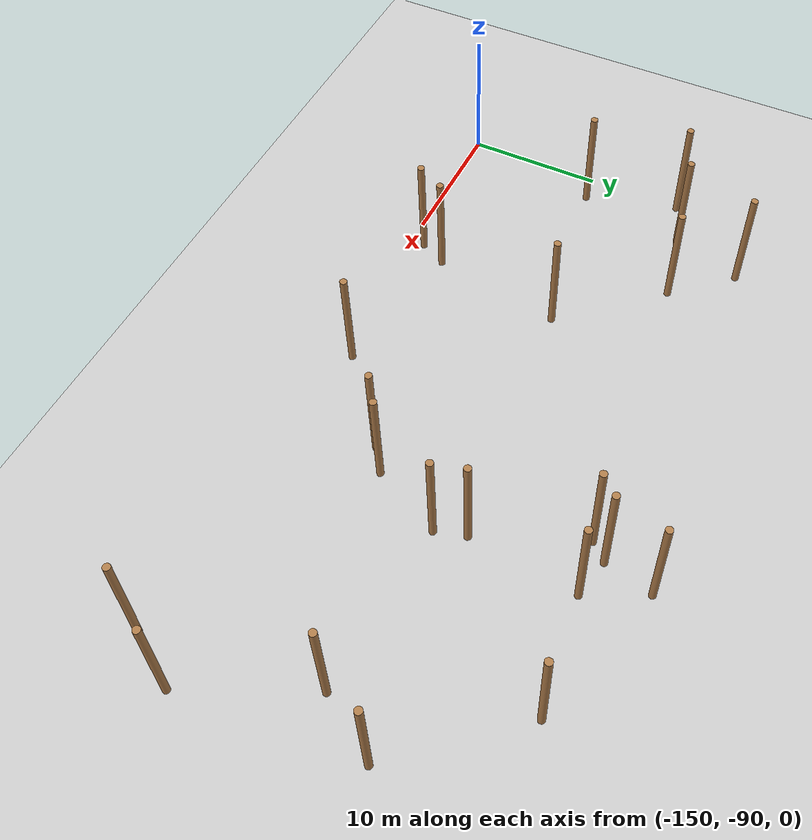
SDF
<sdf version="1.5">
 <world name="padure_tactica">
  <include><uri>model://sun</uri></include>
  <include><uri>model://ground_plane</uri></include>
  <model name="tree_69">
   <static>true</static>
   <pose>-120.06 -68.16 4.0 0 0 0</pose>
   <link name="link">
    <collision name="collision">
     <geometry><cylinder><radius>0.25</radius><length>8.0</length></cylinder></geometry>
    </collision>
    <visual name="visual">
     <geometry><cylinder><radius>0.25</radius><length>8.0</length></cylinder></geometry>
     <material>
      <script><uri>file://media/materials/scripts/gazebo.material</uri><name>Gazebo/Wood</name></script>
     </material>
    </visual>
   </link>
  </model>
  <model name="tree_93">
   <static>true</static>
   <pose>-117.07 -75.36 4.0 0 0 0</pose>
   <link name="link">
    <collision name="collision">
     <geometry><cylinder><radius>0.25</radius><length>8.0</length></cylinder></geometry>
    </collision>
    <visual name="visual">
     <geometry><cylinder><radius>0.25</radius><length>8.0</length></cylinder></geometry>
     <material>
      <script><uri>file://media/materials/scripts/gazebo.material</uri><name>Gazebo/Wood</name></script>
     </material>
    </visual>
   </link>
  </model>
  <model name="tree_109">
   <static>true</static>
   <pose>-141.44 -70.79 4.0 0 0 0</pose>
   <link name="link">
    <collision name="collision">
     <geometry><cylinder><radius>0.25</radius><length>8.0</length></cylinder></geometry>
    </collision>
    <visual name="visual">
     <geometry><cylinder><radius>0.25</radius><length>8.0</length></cylinder></geometry>
     <material>
      <script><uri>file://media/materials/scripts/gazebo.material</uri><name>Gazebo/Wood</name></script>
     </material>
    </visual>
   </link>
  </model>
  <model name="tree_284">
   <static>true</static>
   <pose>-137.13 -86.98 4.0 0 0 0</pose>
   <link name="link">
    <collision name="collision">
     <geometry><cylinder><radius>0.25</radius><length>8.0</length></cylinder></geometry>
    </collision>
    <visual name="visual">
     <geometry><cylinder><radius>0.25</radius><length>8.0</length></cylinder></geometry>
     <material>
      <script><uri>file://media/materials/scripts/gazebo.material</uri><name>Gazebo/Wood</name></script>
     </material>
    </visual>
   </link>
  </model>
  <model name="tree_313">
   <static>true</static>
   <pose>-118.21 -63.54 4.0 0 0 0</pose>
   <link name="link">
    <collision name="collision">
     <geometry><cylinder><radius>0.25</radius><length>8.0</length></cylinder></geometry>
    </collision>
    <visual name="visual">
     <geometry><cylinder><radius>0.25</radius><length>8.0</length></cylinder></geometry>
     <material>
      <script><uri>file://media/materials/scripts/gazebo.material</uri><name>Gazebo/Wood</name></script>
     </material>
    </visual>
   </link>
  </model>
  <model name="tree_363">
   <static>true</static>
   <pose>-120.50 -83.67 4.0 0 0 0</pose>
   <link name="link">
    <collision name="collision">
     <geometry><cylinder><radius>0.25</radius><length>8.0</length></cylinder></geometry>
    </collision>
    <visual name="visual">
     <geometry><cylinder><radius>0.25</radius><length>8.0</length></cylinder></geometry>
     <material>
      <script><uri>file://media/materials/scripts/gazebo.material</uri><name>Gazebo/Wood</name></script>
     </material>
    </visual>
   </link>
  </model>
  <model name="tree_449">
   <static>true</static>
   <pose>-103.01 -90.35 4.0 0 0 0</pose>
   <link name="link">
    <collision name="collision">
     <geometry><cylinder><radius>0.25</radius><length>8.0</length></cylinder></geometry>
    </collision>
    <visual name="visual">
     <geometry><cylinder><radius>0.25</radius><length>8.0</length></cylinder></geometry>
     <material>
      <script><uri>file://media/materials/scripts/gazebo.material</uri><name>Gazebo/Wood</name></script>
     </material>
    </visual>
   </link>
  </model>
  <model name="tree_461">
   <static>true</static>
   <pose>-138.13 -88.96 4.0 0 0 0</pose>
   <link name="link">
    <collision name="collision">
     <geometry><cylinder><radius>0.25</radius><length>8.0</length></cylinder></geometry>
    </collision>
    <visual name="visual">
     <geometry><cylinder><radius>0.25</radius><length>8.0</length></cylinder></geometry>
     <material>
      <script><uri>file://media/materials/scripts/gazebo.material</uri><name>Gazebo/Wood</name></script>
     </material>
    </visual>
   </link>
  </model>
  <model name="tree_524">
   <static>true</static>
   <pose>-101.82 -74.19 4.0 0 0 0</pose>
   <link name="link">
    <collision name="collision">
     <geometry><cylinder><radius>0.25</radius><length>8.0</length></cylinder></geometry>
    </collision>
    <visual name="visual">
     <geometry><cylinder><radius>0.25</radius><length>8.0</length></cylinder></geometry>
     <material>
      <script><uri>file://media/materials/scripts/gazebo.material</uri><name>Gazebo/Wood</name></script>
     </material>
    </visual>
   </link>
  </model>
  <model name="tree_655">
   <static>true</static>
   <pose>-146.64 -71.91 4.0 0 0 0</pose>
   <link name="link">
    <collision name="collision">
     <geometry><cylinder><radius>0.25</radius><length>8.0</length></cylinder></geometry>
    </collision>
    <visual name="visual">
     <geometry><cylinder><radius>0.25</radius><length>8.0</length></cylinder></geometry>
     <material>
      <script><uri>file://media/materials/scripts/gazebo.material</uri><name>Gazebo/Wood</name></script>
     </material>
    </visual>
   </link>
  </model>
  <model name="tree_656">
   <static>true</static>
   <pose>-108.27 -66.58 4.0 0 0 0</pose>
   <link name="link">
    <collision name="collision">
     <geometry><cylinder><radius>0.25</radius><length>8.0</length></cylinder></geometry>
    </collision>
    <visual name="visual">
     <geometry><cylinder><radius>0.25</radius><length>8.0</length></cylinder></geometry>
     <material>
      <script><uri>file://media/materials/scripts/gazebo.material</uri><name>Gazebo/Wood</name></script>
     </material>
    </visual>
   </link>
  </model>
  <model name="tree_714">
   <static>true</static>
   <pose>-118.87 -82.49 4.0 0 0 0</pose>
   <link name="link">
    <collision name="collision">
     <geometry><cylinder><radius>0.25</radius><length>8.0</length></cylinder></geometry>
    </collision>
    <visual name="visual">
     <geometry><cylinder><radius>0.25</radius><length>8.0</length></cylinder></geometry>
     <material>
      <script><uri>file://media/materials/scripts/gazebo.material</uri><name>Gazebo/Wood</name></script>
     </material>
    </visual>
   </link>
  </model>
  <model name="tree_736">
   <static>true</static>
   <pose>-116.46 -77.50 4.0 0 0 0</pose>
   <link name="link">
    <collision name="collision">
     <geometry><cylinder><radius>0.25</radius><length>8.0</length></cylinder></geometry>
    </collision>
    <visual name="visual">
     <geometry><cylinder><radius>0.25</radius><length>8.0</length></cylinder></geometry>
     <material>
      <script><uri>file://media/materials/scripts/gazebo.material</uri><name>Gazebo/Wood</name></script>
     </material>
    </visual>
   </link>
  </model>
  <model name="tree_763">
   <static>true</static>
   <pose>-116.29 -67.59 4.0 0 0 0</pose>
   <link name="link">
    <collision name="collision">
     <geometry><cylinder><radius>0.25</radius><length>8.0</length></cylinder></geometry>
    </collision>
    <visual name="visual">
     <geometry><cylinder><radius>0.25</radius><length>8.0</length></cylinder></geometry>
     <material>
      <script><uri>file://media/materials/scripts/gazebo.material</uri><name>Gazebo/Wood</name></script>
     </material>
    </visual>
   </link>
  </model>
  <model name="tree_912">
   <static>true</static>
   <pose>-100.68 -86.76 4.0 0 0 0</pose>
   <link name="link">
    <collision name="collision">
     <geometry><cylinder><radius>0.25</radius><length>8.0</length></cylinder></geometry>
    </collision>
    <visual name="visual">
     <geometry><cylinder><radius>0.25</radius><length>8.0</length></cylinder></geometry>
     <material>
      <script><uri>file://media/materials/scripts/gazebo.material</uri><name>Gazebo/Wood</name></script>
     </material>
    </visual>
   </link>
  </model>
  <model name="tree_930">
   <static>true</static>
   <pose>-144.97 -66.78 4.0 0 0 0</pose>
   <link name="link">
    <collision name="collision">
     <geometry><cylinder><radius>0.25</radius><length>8.0</length></cylinder></geometry>
    </collision>
    <visual name="visual">
     <geometry><cylinder><radius>0.25</radius><length>8.0</length></cylinder></geometry>
     <material>
      <script><uri>file://media/materials/scripts/gazebo.material</uri><name>Gazebo/Wood</name></script>
     </material>
    </visual>
   </link>
  </model>
  <model name="tree_1042">
   <static>true</static>
   <pose>-126.50 -88.74 4.0 0 0 0</pose>
   <link name="link">
    <collision name="collision">
     <geometry><cylinder><radius>0.25</radius><length>8.0</length></cylinder></geometry>
    </collision>
    <visual name="visual">
     <geometry><cylinder><radius>0.25</radius><length>8.0</length></cylinder></geometry>
     <material>
      <script><uri>file://media/materials/scripts/gazebo.material</uri><name>Gazebo/Wood</name></script>
     </material>
    </visual>
   </link>
  </model>
  <model name="tree_1065">
   <static>true</static>
   <pose>-119.01 -66.99 4.0 0 0 0</pose>
   <link name="link">
    <collision name="collision">
     <geometry><cylinder><radius>0.25</radius><length>8.0</length></cylinder></geometry>
    </collision>
    <visual name="visual">
     <geometry><cylinder><radius>0.25</radius><length>8.0</length></cylinder></geometry>
     <material>
      <script><uri>file://media/materials/scripts/gazebo.material</uri><name>Gazebo/Wood</name></script>
     </material>
    </visual>
   </link>
  </model>
  <model name="tree_1070">
   <static>true</static>
   <pose>-148.05 -79.80 4.0 0 0 0</pose>
   <link name="link">
    <collision name="collision">
     <geometry><cylinder><radius>0.25</radius><length>8.0</length></cylinder></geometry>
    </collision>
    <visual name="visual">
     <geometry><cylinder><radius>0.25</radius><length>8.0</length></cylinder></geometry>
     <material>
      <script><uri>file://media/materials/scripts/gazebo.material</uri><name>Gazebo/Wood</name></script>
     </material>
    </visual>
   </link>
  </model>
  <model name="tree_1176">
   <static>true</static>
   <pose>-104.48 -78.35 4.0 0 0 0</pose>
   <link name="link">
    <collision name="collision">
     <geometry><cylinder><radius>0.25</radius><length>8.0</length></cylinder></geometry>
    </collision>
    <visual name="visual">
     <geometry><cylinder><radius>0.25</radius><length>8.0</length></cylinder></geometry>
     <material>
      <script><uri>file://media/materials/scripts/gazebo.material</uri><name>Gazebo/Wood</name></script>
     </material>
    </visual>
   </link>
  </model>
  <model name="tree_1178">
   <static>true</static>
   <pose>-135.55 -77.48 4.0 0 0 0</pose>
   <link name="link">
    <collision name="collision">
     <geometry><cylinder><radius>0.25</radius><length>8.0</length></cylinder></geometry>
    </collision>
    <visual name="visual">
     <geometry><cylinder><radius>0.25</radius><length>8.0</length></cylinder></geometry>
     <material>
      <script><uri>file://media/materials/scripts/gazebo.material</uri><name>Gazebo/Wood</name></script>
     </material>
    </visual>
   </link>
  </model>
  <model name="tree_1198">
   <static>true</static>
   <pose>-149.91 -73.07 4.0 0 0 0</pose>
   <link name="link">
    <collision name="collision">
     <geometry><cylinder><radius>0.25</radius><length>8.0</length></cylinder></geometry>
    </collision>
    <visual name="visual">
     <geometry><cylinder><radius>0.25</radius><length>8.0</length></cylinder></geometry>
     <material>
      <script><uri>file://media/materials/scripts/gazebo.material</uri><name>Gazebo/Wood</name></script>
     </material>
    </visual>
   </link>
  </model>
 </world>
</sdf>
